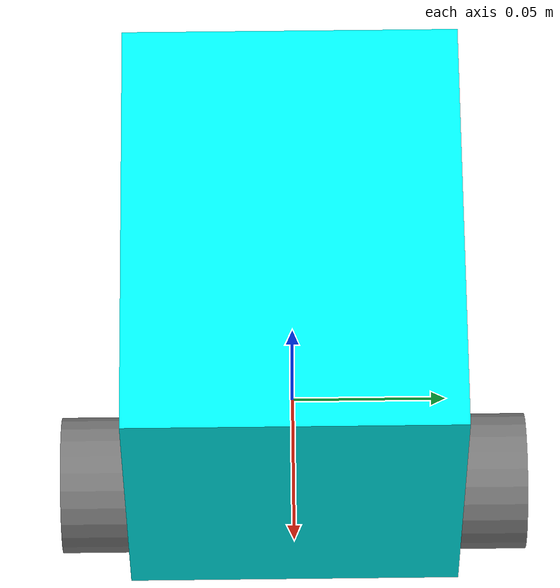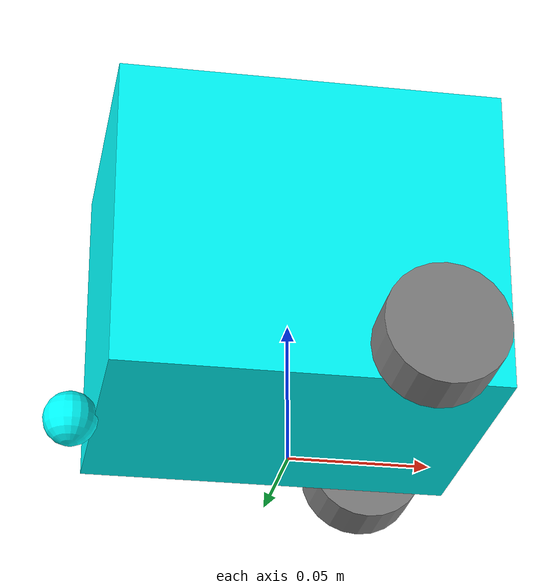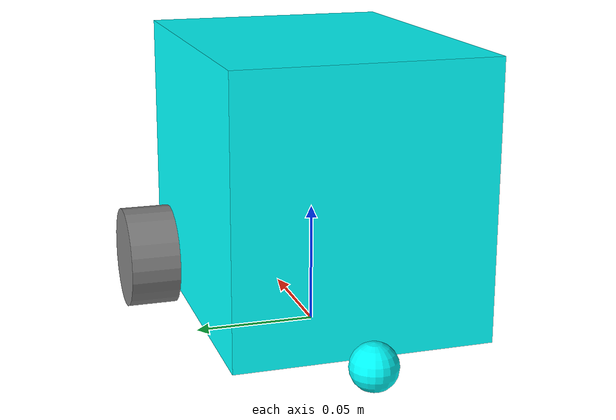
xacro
<?xml version="1.0"?>
<robot name="lego_bot" xmlns:xacro="http://ros.org/wiki/xacro">

    <!-- Define robot constants -->
    <!-- stud=0.008, w=13, l=17, h=14 -->
    <!-- center (8.5, 6.5, 7)*0.008 -->

    <xacro:property name="base_width" value="0.104"/>
    <xacro:property name="base_length" value="0.136"/>
    <xacro:property name="base_height" value="0.112"/>

    <xacro:property name="wheel_radius" value="0.0216"/>
    <xacro:property name="wheel_width" value="0.021"/>
    <xacro:property name="wheel_ygap" value="0.011"/>
    <xacro:property name="wheel_zoff" value="0.044"/>
    <xacro:property name="wheel_xoff" value="0.04"/>

    <xacro:property name="caster_xoff" value="0.076"/>

    <!-- Define inertial property macros  -->
    <xacro:macro name="box_inertia" params="m w h d">
        <inertial>
            <origin xyz="0 0 0" rpy="${pi/2} 0 ${pi/2}"/>
            <mass value="${m}"/>
            <inertia ixx="${(m/12) * (h*h + d*d)}" ixy="0.0" ixz="0.0" iyy="${(m/12) * (w*w + d*d)}" iyz="0.0" izz="${(m/12) * (w*w + h*h)}"/>
        </inertial>
    </xacro:macro>

    <xacro:macro name="cylinder_inertia" params="m r h">
        <inertial>
            <origin xyz="0 0 0" rpy="${pi/2} 0 0" />
            <mass value="${m}"/>
            <inertia ixx="${(m/12) * (3*r*r + h*h)}" ixy = "0" ixz = "0" iyy="${(m/12) * (3*r*r + h*h)}" iyz = "0" izz="${(m/2) * (r*r)}"/>
        </inertial>
    </xacro:macro>

    <xacro:macro name="sphere_inertia" params="m r">
        <inertial>
            <mass value="${m}"/>
            <inertia ixx="${(2/5) * m * (r*r)}" ixy="0.0" ixz="0.0" iyy="${(2/5) * m * (r*r)}" iyz="0.0" izz="${(2/5) * m * (r*r)}"/>
        </inertial>
    </xacro:macro>

    <!-- dummy link without inertia for usage with KDL -->

    <!-- Robot Base -->
    <link name="base_center_link">
        <visual>
            <geometry>
                <box size="${base_length} ${base_width} ${base_height}"/>
            </geometry>
            <material name="Cyan">
                <color rgba="0 1.0 1.0 1.0"/>
            </material>
        </visual>
        <collision>
            <geometry>
                <box size="${base_length} ${base_width} ${base_height}"/>
            </geometry>
        </collision>

        <xacro:box_inertia m="1" w="${base_width}" d="${base_length}" h="${base_height}"/>
    </link>

    <!-- Robot Footprint -->
    <link name="base_link"/>

    <joint name="base_joint" type="fixed">
        <parent link="base_link"/>
        <child link="base_center_link"/>
        <origin xyz="0.0 0.0 ${wheel_radius+wheel_zoff}" rpy="0 0 0"/>
    </joint>

    <!-- Wheels -->
    <xacro:macro name="wheel" params="prefix x_reflect y_reflect">
        <link name="${prefix}_link">
        <visual>
            <origin xyz="0 0 0" rpy="${pi/2} 0 0"/>
            <geometry>
                <cylinder radius="${wheel_radius}" length="${wheel_width}"/>
            </geometry>
            <material name="Gray">
                <color rgba="0.5 0.5 0.5 1.0"/>
            </material>
        </visual>
        <collision>
            <origin xyz="0 0 0" rpy="${pi/2} 0 0"/>
            <geometry>
                <cylinder radius="${wheel_radius}" length="${wheel_width}"/>
            </geometry>
        </collision>

        <xacro:cylinder_inertia m="0.25" r="${wheel_radius}" h="${wheel_width}"/>
        </link>

        <joint name="${prefix}_joint" type="continuous">
            <parent link="base_center_link"/>
            <child link="${prefix}_link"/>
            <origin xyz="${x_reflect*wheel_xoff} ${y_reflect*(base_width/2+wheel_ygap)} ${-wheel_zoff}" rpy="0 0 0"/>
            <axis xyz="0 1 0"/>
        </joint>
    </xacro:macro>

    <xacro:wheel prefix="drivewhl_l" x_reflect="1" y_reflect="1" />
    <xacro:wheel prefix="drivewhl_r" x_reflect="1" y_reflect="-1" />

    <!-- Caster Wheel -->
    <link name="front_caster">
        <visual>
        <geometry>
            <sphere radius="${(wheel_radius+wheel_zoff-(base_height/2))}"/>
        </geometry>
        <material name="Cyan">
            <color rgba="0 1.0 1.0 1.0"/>
        </material>
        </visual>
        <collision>
            <origin xyz="0 0 0" rpy="0 0 0"/>
            <geometry>
                <sphere radius="${(wheel_radius+wheel_zoff-(base_height/2))}"/>
            </geometry>
        </collision>

        <xacro:sphere_inertia m="0.25" r="${(wheel_radius+wheel_zoff-(base_height/2))}"/>
    </link>

    <joint name="caster_joint" type="fixed">
        <parent link="base_center_link"/>
        <child link="front_caster"/>
        <origin xyz="${-caster_xoff} 0.0 ${-(base_height/2)}" rpy="0 0 0"/>
    </joint>

</robot>
